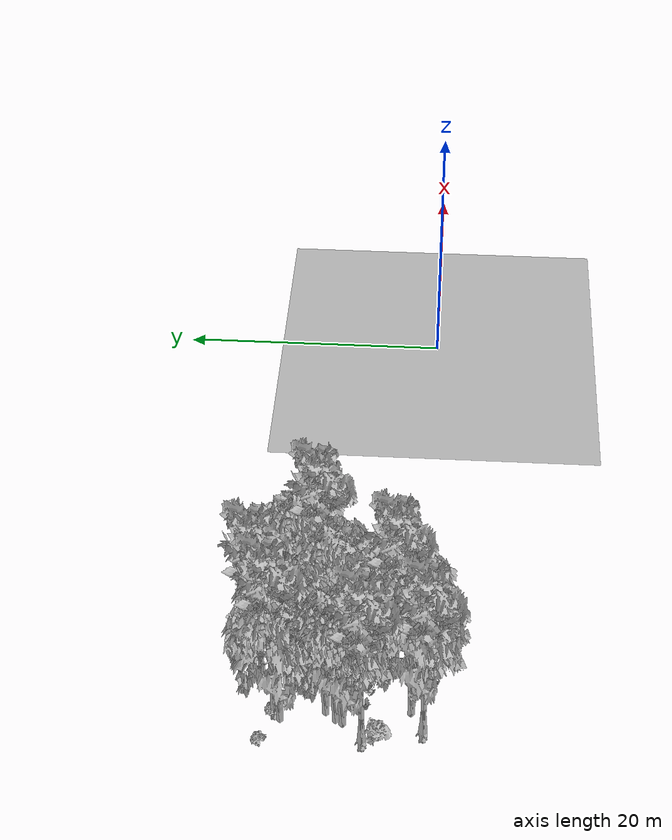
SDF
<sdf version="1.7">
 <world name="default">
  <model name="ground_plane">
   <static>1</static>
   <link name="link">
    <collision name="collision">
     <pose>-50 0 0 0 -0 0</pose>
     <geometry><plane><normal>0 0 1</normal><size>80 80</size></plane></geometry>
     <surface><contact><ode><min_depth>0.01</min_depth><max_vel>0</max_vel></ode></contact></surface>
    </collision>
    <visual name="grass">
     <cast_shadows>0</cast_shadows>
     <geometry>
      <mesh>
       <scale>0.46714285714285714 0.46714285714285714 0.1</scale>
       <uri>file://grass_plane/meshes/grass_plane.dae</uri>
      </mesh>
     </geometry>
    </visual>
   </link>
  </model>
  <model name="Tree 15">
   <static>1</static>
   <pose>-31.19612990582195 6.275217418282715 0 1.57079 -0 0</pose>
   <link name="link">
    <collision name="collision">
     <geometry><mesh><scale>3.5 5 3.5</scale><uri>model://tree_2/meshes/tree_2.obj</uri></mesh></geometry>
    </collision>
    <visual name="visual">
     <geometry><mesh><scale>3.5 5 3.5</scale><uri>model://tree_2/meshes/tree_2.obj</uri></mesh></geometry>
    </visual>
   </link>
  </model>
  <model name="Tree 21">
   <static>1</static>
   <pose>-37.32069303285222 5.129252483326766 0 1.57079 -0 0</pose>
   <link name="link">
    <collision name="collision">
     <geometry><mesh><scale>3.5 5 3.5</scale><uri>model://tree_2/meshes/tree_2.obj</uri></mesh></geometry>
    </collision>
    <visual name="visual">
     <geometry><mesh><scale>3.5 5 3.5</scale><uri>model://tree_2/meshes/tree_2.obj</uri></mesh></geometry>
    </visual>
   </link>
  </model>
  <model name="Tree 27">
   <static>1</static>
   <pose>-28.675681978317527 8.44207501688436 0 1.57079 -0 0</pose>
   <link name="link">
    <collision name="collision">
     <geometry><mesh><scale>3.5 5 3.5</scale><uri>model://tree_2/meshes/tree_2.obj</uri></mesh></geometry>
    </collision>
    <visual name="visual">
     <geometry><mesh><scale>3.5 5 3.5</scale><uri>model://tree_2/meshes/tree_2.obj</uri></mesh></geometry>
    </visual>
   </link>
  </model>
  <model name="Tree 97">
   <static>1</static>
   <pose>-37.18061963889433 9.188974344196026 0 1.57079 -0 0</pose>
   <link name="link">
    <collision name="collision">
     <geometry><mesh><scale>3.5 5 3.5</scale><uri>model://tree_2/meshes/tree_2.obj</uri></mesh></geometry>
    </collision>
    <visual name="visual">
     <geometry><mesh><scale>3.5 5 3.5</scale><uri>model://tree_2/meshes/tree_2.obj</uri></mesh></geometry>
    </visual>
   </link>
  </model>
  <model name="Tree 162">
   <static>1</static>
   <pose>-33.82462145252178 0.9891459163323759 0 1.57079 -0 0</pose>
   <link name="link">
    <collision name="collision">
     <geometry><mesh><scale>3.5 5 3.5</scale><uri>model://tree_2/meshes/tree_2.obj</uri></mesh></geometry>
    </collision>
    <visual name="visual">
     <geometry><mesh><scale>3.5 5 3.5</scale><uri>model://tree_2/meshes/tree_2.obj</uri></mesh></geometry>
    </visual>
   </link>
  </model>
  <model name="Tree 297">
   <static>1</static>
   <pose>-36.24801975632905 0.7341121320733208 0 1.57079 -0 0</pose>
   <link name="link">
    <collision name="collision">
     <geometry><mesh><scale>3.5 5 3.5</scale><uri>model://tree_2/meshes/tree_2.obj</uri></mesh></geometry>
    </collision>
    <visual name="visual">
     <geometry><mesh><scale>3.5 5 3.5</scale><uri>model://tree_2/meshes/tree_2.obj</uri></mesh></geometry>
    </visual>
   </link>
  </model>
  <model name="Tree 331">
   <static>1</static>
   <pose>-37.05239520610076 5.587705630642397 0 1.57079 -0 0</pose>
   <link name="link">
    <collision name="collision">
     <geometry><mesh><scale>3.5 5 3.5</scale><uri>model://tree_2/meshes/tree_2.obj</uri></mesh></geometry>
    </collision>
    <visual name="visual">
     <geometry><mesh><scale>3.5 5 3.5</scale><uri>model://tree_2/meshes/tree_2.obj</uri></mesh></geometry>
    </visual>
   </link>
  </model>
  <model name="Tree 341">
   <static>1</static>
   <pose>-33.76997358312306 10.702650515708399 0 1.57079 -0 0</pose>
   <link name="link">
    <collision name="collision">
     <geometry><mesh><scale>3.5 5 3.5</scale><uri>model://tree_9/meshes/tree_9.obj</uri></mesh></geometry>
    </collision>
    <visual name="visual">
     <geometry><mesh><scale>3.5 5 3.5</scale><uri>model://tree_9/meshes/tree_9.obj</uri></mesh></geometry>
    </visual>
   </link>
  </model>
  <model name="Tree 386">
   <static>1</static>
   <pose>-37.542023102084926 -0.05821189215026834 0 1.57079 -0 0</pose>
   <link name="link">
    <collision name="collision">
     <geometry><mesh><scale>3.5 5 3.5</scale><uri>model://tree_9/meshes/tree_9.obj</uri></mesh></geometry>
    </collision>
    <visual name="visual">
     <geometry><mesh><scale>3.5 5 3.5</scale><uri>model://tree_9/meshes/tree_9.obj</uri></mesh></geometry>
    </visual>
   </link>
  </model>
  <model name="Tree 430">
   <static>1</static>
   <pose>-36.4841825592083 6.267580298898778 0 1.57079 -0 0</pose>
   <link name="link">
    <collision name="collision">
     <geometry><mesh><scale>3.5 5 3.5</scale><uri>model://tree_2/meshes/tree_2.obj</uri></mesh></geometry>
    </collision>
    <visual name="visual">
     <geometry><mesh><scale>3.5 5 3.5</scale><uri>model://tree_2/meshes/tree_2.obj</uri></mesh></geometry>
    </visual>
   </link>
  </model>
  <model name="Tree 450">
   <static>1</static>
   <pose>-38.426690921948946 3.8382352547510195 0 1.57079 -0 0</pose>
   <link name="link">
    <collision name="collision">
     <geometry><mesh><scale>3.5 5 3.5</scale><uri>model://tree_9/meshes/tree_9.obj</uri></mesh></geometry>
    </collision>
    <visual name="visual">
     <geometry><mesh><scale>3.5 5 3.5</scale><uri>model://tree_9/meshes/tree_9.obj</uri></mesh></geometry>
    </visual>
   </link>
  </model>
  <model name="Tree 475">
   <static>1</static>
   <pose>-34.56717716496885 8.92816574911442 0 1.57079 -0 0</pose>
   <link name="link">
    <collision name="collision">
     <geometry><mesh><scale>3.5 5 3.5</scale><uri>model://tree_2/meshes/tree_2.obj</uri></mesh></geometry>
    </collision>
    <visual name="visual">
     <geometry><mesh><scale>3.5 5 3.5</scale><uri>model://tree_2/meshes/tree_2.obj</uri></mesh></geometry>
    </visual>
   </link>
  </model>
  <model name="Tree 483">
   <static>1</static>
   <pose>-28.467185435157 7.131140841054197 0 1.57079 -0 0</pose>
   <link name="link">
    <collision name="collision">
     <geometry><mesh><scale>3.5 5 3.5</scale><uri>model://tree_9/meshes/tree_9.obj</uri></mesh></geometry>
    </collision>
    <visual name="visual">
     <geometry><mesh><scale>3.5 5 3.5</scale><uri>model://tree_9/meshes/tree_9.obj</uri></mesh></geometry>
    </visual>
   </link>
  </model>
  <model name="Tree 515">
   <static>1</static>
   <pose>-32.53204572526164 1.9245620218430943 0 1.57079 -0 0</pose>
   <link name="link">
    <collision name="collision">
     <geometry><mesh><scale>3.5 5 3.5</scale><uri>model://tree_9/meshes/tree_9.obj</uri></mesh></geometry>
    </collision>
    <visual name="visual">
     <geometry><mesh><scale>3.5 5 3.5</scale><uri>model://tree_9/meshes/tree_9.obj</uri></mesh></geometry>
    </visual>
   </link>
  </model>
  <model name="Tree 587">
   <static>1</static>
   <pose>-36.288840842546456 9.634352396354132 0 1.57079 -0 0</pose>
   <link name="link">
    <collision name="collision">
     <geometry><mesh><scale>3.5 5 3.5</scale><uri>model://tree_9/meshes/tree_9.obj</uri></mesh></geometry>
    </collision>
    <visual name="visual">
     <geometry><mesh><scale>3.5 5 3.5</scale><uri>model://tree_9/meshes/tree_9.obj</uri></mesh></geometry>
    </visual>
   </link>
  </model>
  <model name="Bush 0">
   <static>1</static>
   <pose>-34.30680105767179 3.579075385108112 0 1.57079 -0 0</pose>
   <link name="link">
    <collision name="collision">
     <geometry><mesh><scale>2 2 2</scale><uri>model://bush_4/meshes/bush_4.obj</uri></mesh></geometry>
     <surface><contact><collide_without_contact>false</collide_without_contact></contact></surface>
    </collision>
    <visual name="visual">
     <geometry><mesh><scale>2 2 2</scale><uri>model://bush_4/meshes/bush_4.obj</uri></mesh></geometry>
    </visual>
   </link>
  </model>
  <model name="Bush 101">
   <static>1</static>
   <pose>-33.95608979195746 3.795027430666636 0 1.57079 -0 0</pose>
   <link name="link">
    <collision name="collision">
     <geometry><mesh><scale>2 2 2</scale><uri>model://bush_2/meshes/bush_2.obj</uri></mesh></geometry>
     <surface><contact><collide_without_contact>false</collide_without_contact></contact></surface>
    </collision>
    <visual name="visual">
     <geometry><mesh><scale>2 2 2</scale><uri>model://bush_2/meshes/bush_2.obj</uri></mesh></geometry>
    </visual>
   </link>
  </model>
  <model name="Bush 121">
   <static>1</static>
   <pose>-32.9657740001792 1.9449751798717898 0 1.57079 -0 0</pose>
   <link name="link">
    <collision name="collision">
     <geometry><mesh><scale>2 2 2</scale><uri>model://bush_0/meshes/bush_0.obj</uri></mesh></geometry>
     <surface><contact><collide_without_contact>false</collide_without_contact></contact></surface>
    </collision>
    <visual name="visual">
     <geometry><mesh><scale>2 2 2</scale><uri>model://bush_0/meshes/bush_0.obj</uri></mesh></geometry>
    </visual>
   </link>
  </model>
  <model name="Bush 216">
   <static>1</static>
   <pose>-29.00227535210196 8.794914145914483 0 1.57079 -0 0</pose>
   <link name="link">
    <collision name="collision">
     <geometry><mesh><scale>2 2 2</scale><uri>model://bush_2/meshes/bush_2.obj</uri></mesh></geometry>
     <surface><contact><collide_without_contact>false</collide_without_contact></contact></surface>
    </collision>
    <visual name="visual">
     <geometry><mesh><scale>2 2 2</scale><uri>model://bush_2/meshes/bush_2.obj</uri></mesh></geometry>
    </visual>
   </link>
  </model>
  <model name="Bush 410">
   <static>1</static>
   <pose>-38.60126446174896 10.45588124805515 0 1.57079 -0 0</pose>
   <link name="link">
    <collision name="collision">
     <geometry><mesh><scale>2 2 2</scale><uri>model://bush_2/meshes/bush_2.obj</uri></mesh></geometry>
     <surface><contact><collide_without_contact>false</collide_without_contact></contact></surface>
    </collision>
    <visual name="visual">
     <geometry><mesh><scale>2 2 2</scale><uri>model://bush_2/meshes/bush_2.obj</uri></mesh></geometry>
    </visual>
   </link>
  </model>
  <model name="Bush 434">
   <static>1</static>
   <pose>-36.24694588693607 9.793587834694755 0 1.57079 -0 0</pose>
   <link name="link">
    <collision name="collision">
     <geometry><mesh><scale>2 2 2</scale><uri>model://bush_2/meshes/bush_2.obj</uri></mesh></geometry>
     <surface><contact><collide_without_contact>false</collide_without_contact></contact></surface>
    </collision>
    <visual name="visual">
     <geometry><mesh><scale>2 2 2</scale><uri>model://bush_2/meshes/bush_2.obj</uri></mesh></geometry>
    </visual>
   </link>
  </model>
  <model name="Bush 533">
   <static>1</static>
   <pose>-38.289538374655415 2.7469856659301044 0 1.57079 -0 0</pose>
   <link name="link">
    <collision name="collision">
     <geometry><mesh><scale>2 2 2</scale><uri>model://bush_1/meshes/bush_1.obj</uri></mesh></geometry>
     <surface><contact><collide_without_contact>false</collide_without_contact></contact></surface>
    </collision>
    <visual name="visual">
     <geometry><mesh><scale>2 2 2</scale><uri>model://bush_1/meshes/bush_1.obj</uri></mesh></geometry>
    </visual>
   </link>
  </model>
  <model name="Bush 595">
   <static>1</static>
   <pose>-34.127934891603495 7.434504709783781 0 1.57079 -0 0</pose>
   <link name="link">
    <collision name="collision">
     <geometry><mesh><scale>2 2 2</scale><uri>model://bush_2/meshes/bush_2.obj</uri></mesh></geometry>
     <surface><contact><collide_without_contact>false</collide_without_contact></contact></surface>
    </collision>
    <visual name="visual">
     <geometry><mesh><scale>2 2 2</scale><uri>model://bush_2/meshes/bush_2.obj</uri></mesh></geometry>
    </visual>
   </link>
  </model>
 </world>
</sdf>
